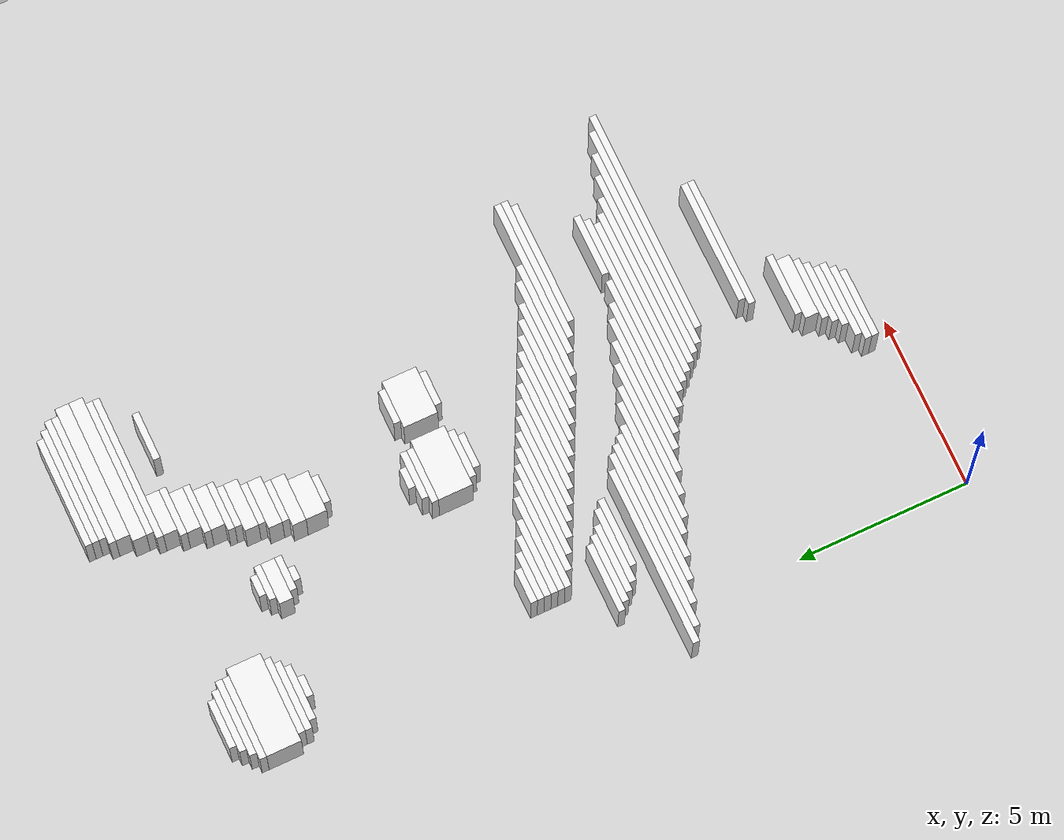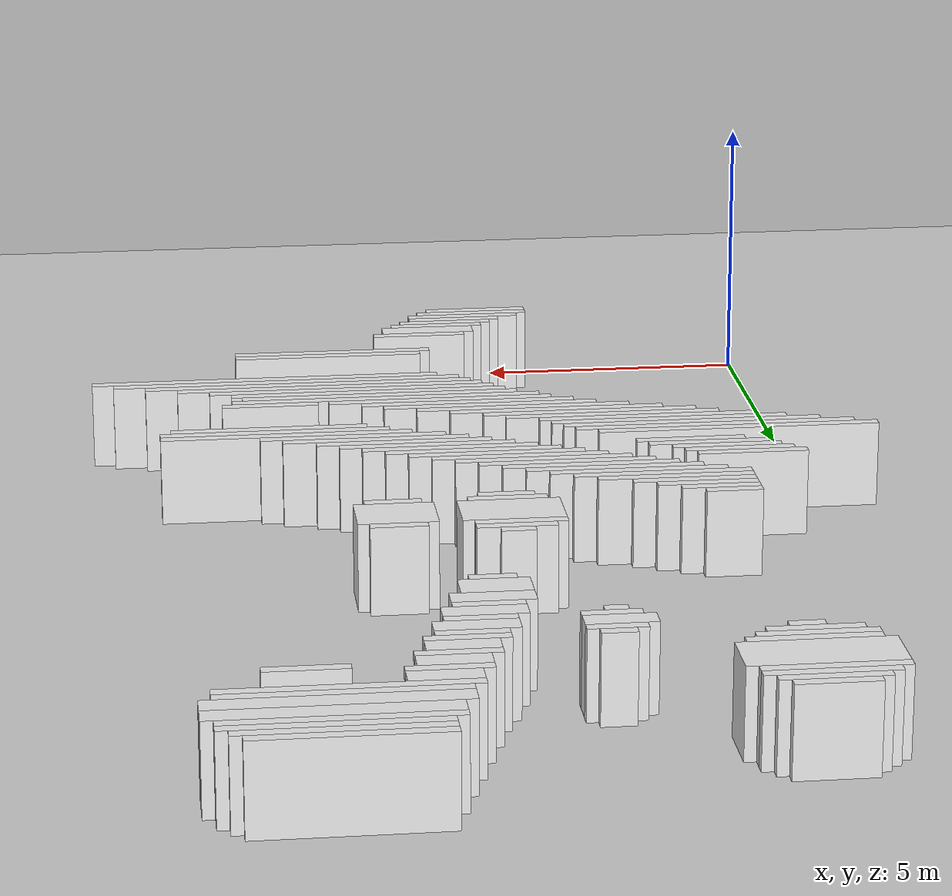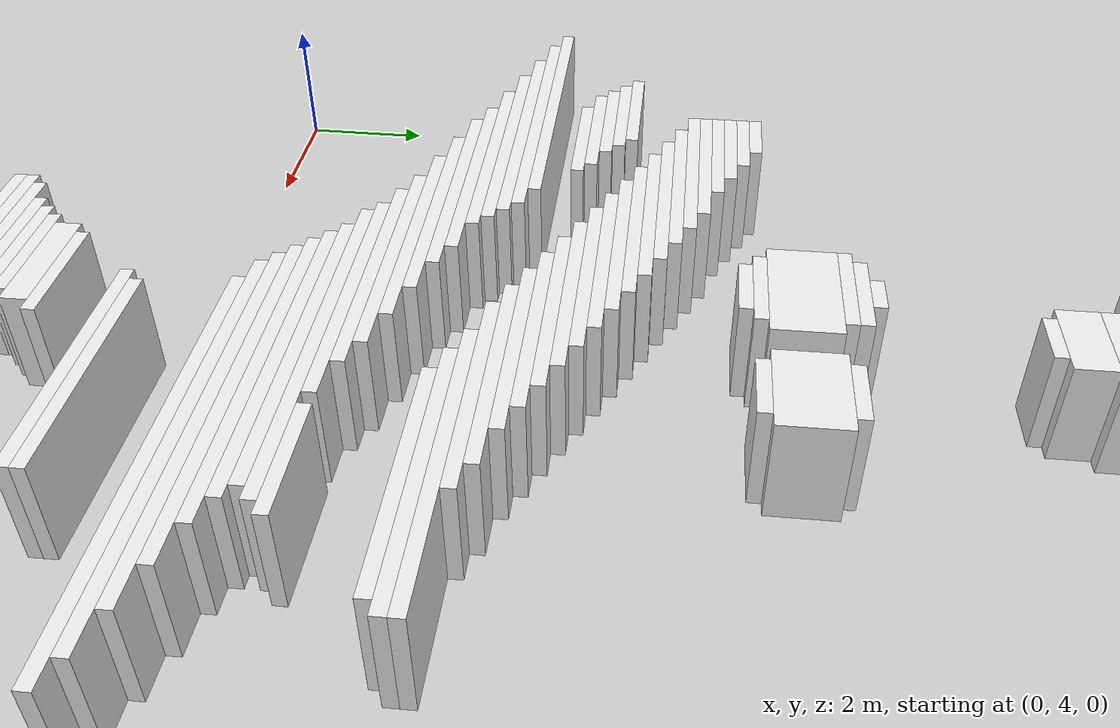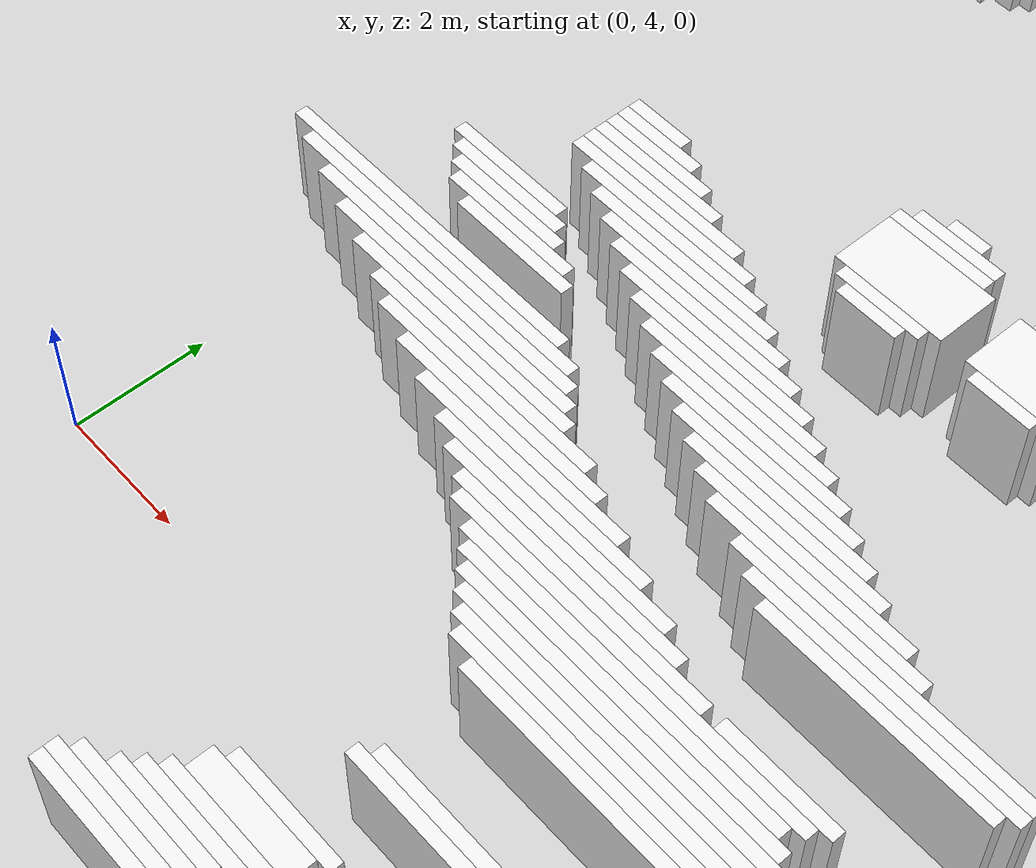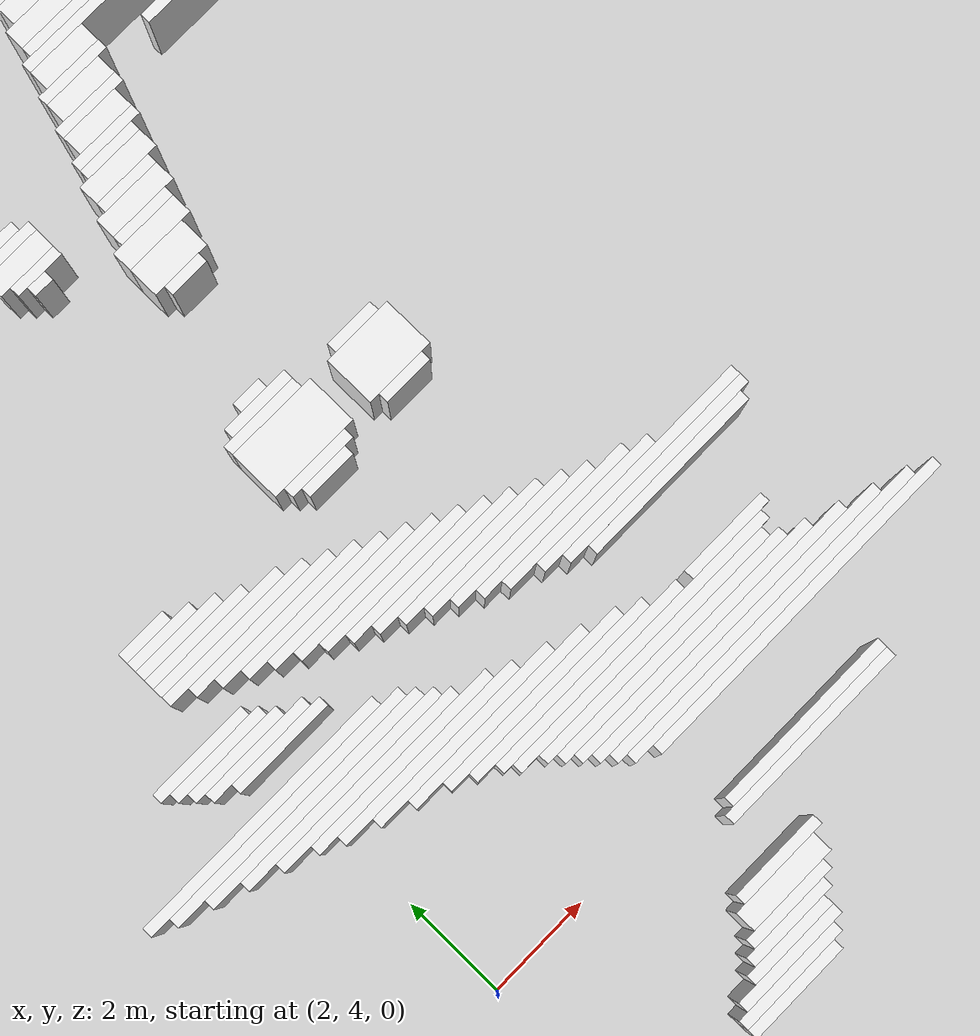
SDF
<sdf version="1.7">
 <world name="default">
  <model name="ground_plane">
   <static>1</static>
   <link name="link">
    <collision name="collision">
     <geometry><plane><normal>0 0 1</normal><size>120 120</size></plane></geometry>
    </collision>
    <visual name="visual">
     <geometry><plane><normal>0 0 1</normal><size>120 120</size></plane></geometry>
     <material>
      <script><uri>file://media/materials/scripts/gazebo.material</uri><name>Gazebo/Grey</name></script>
     </material>
    </visual>
   </link>
  </model>
  <model name="random_complex_03_model">
   <static>1</static>
   <link name="obs_848">
    <pose>9.6000 22.1000 0.8000 0 0 0</pose>
    <collision name="obs_848_col"><geometry><box><size>3.2000 0.2000 1.6000</size></box></geometry></collision>
    <visual name="obs_848_vis">
     <geometry><box><size>3.2000 0.2000 1.6000</size></box></geometry>
     <material>
      <script><uri>file://media/materials/scripts/gazebo.material</uri><name>Gazebo/White</name></script>
     </material>
    </visual>
   </link>
   <link name="obs_857">
    <pose>9.7000 21.9000 0.8000 0 0 0</pose>
    <collision name="obs_857_col"><geometry><box><size>3.4000 0.2000 1.6000</size></box></geometry></collision>
    <visual name="obs_857_vis">
     <geometry><box><size>3.4000 0.2000 1.6000</size></box></geometry>
     <material>
      <script><uri>file://media/materials/scripts/gazebo.material</uri><name>Gazebo/White</name></script>
     </material>
    </visual>
   </link>
   <link name="obs_866">
    <pose>9.8000 21.7000 0.8000 0 0 0</pose>
    <collision name="obs_866_col"><geometry><box><size>3.6000 0.2000 1.6000</size></box></geometry></collision>
    <visual name="obs_866_vis">
     <geometry><box><size>3.6000 0.2000 1.6000</size></box></geometry>
     <material>
      <script><uri>file://media/materials/scripts/gazebo.material</uri><name>Gazebo/White</name></script>
     </material>
    </visual>
   </link>
   <link name="obs_875">
    <pose>9.7000 21.5000 0.8000 0 0 0</pose>
    <collision name="obs_875_col"><geometry><box><size>3.8000 0.2000 1.6000</size></box></geometry></collision>
    <visual name="obs_875_vis">
     <geometry><box><size>3.8000 0.2000 1.6000</size></box></geometry>
     <material>
      <script><uri>file://media/materials/scripts/gazebo.material</uri><name>Gazebo/White</name></script>
     </material>
    </visual>
   </link>
   <link name="obs_889">
    <pose>9.8000 21.2000 0.8000 0 0 0</pose>
    <collision name="obs_889_col"><geometry><box><size>4.0000 0.4000 1.6000</size></box></geometry></collision>
    <visual name="obs_889_vis">
     <geometry><box><size>4.0000 0.4000 1.6000</size></box></geometry>
     <material>
      <script><uri>file://media/materials/scripts/gazebo.material</uri><name>Gazebo/White</name></script>
     </material>
    </visual>
   </link>
   <link name="obs_904">
    <pose>2.1000 20.9000 0.8000 0 0 0</pose>
    <collision name="obs_904_col"><geometry><box><size>1.4000 0.2000 1.6000</size></box></geometry></collision>
    <visual name="obs_904_vis">
     <geometry><box><size>1.4000 0.2000 1.6000</size></box></geometry>
     <material>
      <script><uri>file://media/materials/scripts/gazebo.material</uri><name>Gazebo/White</name></script>
     </material>
    </visual>
   </link>
   <link name="obs_909">
    <pose>9.7000 20.8000 0.8000 0 0 0</pose>
    <collision name="obs_909_col"><geometry><box><size>4.2000 0.4000 1.6000</size></box></geometry></collision>
    <visual name="obs_909_vis">
     <geometry><box><size>4.2000 0.4000 1.6000</size></box></geometry>
     <material>
      <script><uri>file://media/materials/scripts/gazebo.material</uri><name>Gazebo/White</name></script>
     </material>
    </visual>
   </link>
   <link name="obs_915">
    <pose>2.1000 20.7000 0.8000 0 0 0</pose>
    <collision name="obs_915_col"><geometry><box><size>1.8000 0.2000 1.6000</size></box></geometry></collision>
    <visual name="obs_915_vis">
     <geometry><box><size>1.8000 0.2000 1.6000</size></box></geometry>
     <material>
      <script><uri>file://media/materials/scripts/gazebo.material</uri><name>Gazebo/White</name></script>
     </material>
    </visual>
   </link>
   <link name="obs_926">
    <pose>2.1000 20.5000 0.8000 0 0 0</pose>
    <collision name="obs_926_col"><geometry><box><size>2.2000 0.2000 1.6000</size></box></geometry></collision>
    <visual name="obs_926_vis">
     <geometry><box><size>2.2000 0.2000 1.6000</size></box></geometry>
     <material>
      <script><uri>file://media/materials/scripts/gazebo.material</uri><name>Gazebo/White</name></script>
     </material>
    </visual>
   </link>
   <link name="obs_927">
    <pose>9.6000 20.5000 0.8000 0 0 0</pose>
    <collision name="obs_927_col"><geometry><box><size>4.0000 0.2000 1.6000</size></box></geometry></collision>
    <visual name="obs_927_vis">
     <geometry><box><size>4.0000 0.2000 1.6000</size></box></geometry>
     <material>
      <script><uri>file://media/materials/scripts/gazebo.material</uri><name>Gazebo/White</name></script>
     </material>
    </visual>
   </link>
   <link name="obs_937">
    <pose>2.0000 20.3000 0.8000 0 0 0</pose>
    <collision name="obs_937_col"><geometry><box><size>2.4000 0.2000 1.6000</size></box></geometry></collision>
    <visual name="obs_937_vis">
     <geometry><box><size>2.4000 0.2000 1.6000</size></box></geometry>
     <material>
      <script><uri>file://media/materials/scripts/gazebo.material</uri><name>Gazebo/White</name></script>
     </material>
    </visual>
   </link>
   <link name="obs_938">
    <pose>9.5000 20.3000 0.8000 0 0 0</pose>
    <collision name="obs_938_col"><geometry><box><size>4.2000 0.2000 1.6000</size></box></geometry></collision>
    <visual name="obs_938_vis">
     <geometry><box><size>4.2000 0.2000 1.6000</size></box></geometry>
     <material>
      <script><uri>file://media/materials/scripts/gazebo.material</uri><name>Gazebo/White</name></script>
     </material>
    </visual>
   </link>
   <link name="obs_953">
    <pose>8.0000 20.0000 0.8000 0 0 0</pose>
    <collision name="obs_953_col"><geometry><box><size>1.2000 0.4000 1.6000</size></box></geometry></collision>
    <visual name="obs_953_vis">
     <geometry><box><size>1.2000 0.4000 1.6000</size></box></geometry>
     <material>
      <script><uri>file://media/materials/scripts/gazebo.material</uri><name>Gazebo/White</name></script>
     </material>
    </visual>
   </link>
   <link name="obs_970">
    <pose>7.9000 19.7000 0.8000 0 0 0</pose>
    <collision name="obs_970_col"><geometry><box><size>1.4000 0.2000 1.6000</size></box></geometry></collision>
    <visual name="obs_970_vis">
     <geometry><box><size>1.4000 0.2000 1.6000</size></box></geometry>
     <material>
      <script><uri>file://media/materials/scripts/gazebo.material</uri><name>Gazebo/White</name></script>
     </material>
    </visual>
   </link>
   <link name="obs_982">
    <pose>10.1000 19.5000 0.8000 0 0 0</pose>
    <collision name="obs_982_col"><geometry><box><size>1.4000 0.2000 1.6000</size></box></geometry></collision>
    <visual name="obs_982_vis">
     <geometry><box><size>1.4000 0.2000 1.6000</size></box></geometry>
     <material>
      <script><uri>file://media/materials/scripts/gazebo.material</uri><name>Gazebo/White</name></script>
     </material>
    </visual>
   </link>
   <link name="obs_988">
    <pose>2.1000 19.7000 0.8000 0 0 0</pose>
    <collision name="obs_988_col"><geometry><box><size>2.6000 1.0000 1.6000</size></box></geometry></collision>
    <visual name="obs_988_vis">
     <geometry><box><size>2.6000 1.0000 1.6000</size></box></geometry>
     <material>
      <script><uri>file://media/materials/scripts/gazebo.material</uri><name>Gazebo/White</name></script>
     </material>
    </visual>
   </link>
   <link name="obs_989">
    <pose>7.8000 19.4000 0.8000 0 0 0</pose>
    <collision name="obs_989_col"><geometry><box><size>1.2000 0.4000 1.6000</size></box></geometry></collision>
    <visual name="obs_989_vis">
     <geometry><box><size>1.2000 0.4000 1.6000</size></box></geometry>
     <material>
      <script><uri>file://media/materials/scripts/gazebo.material</uri><name>Gazebo/White</name></script>
     </material>
    </visual>
   </link>
   <link name="obs_1003">
    <pose>2.1000 19.1000 0.8000 0 0 0</pose>
    <collision name="obs_1003_col"><geometry><box><size>2.2000 0.2000 1.6000</size></box></geometry></collision>
    <visual name="obs_1003_vis">
     <geometry><box><size>2.2000 0.2000 1.6000</size></box></geometry>
     <material>
      <script><uri>file://media/materials/scripts/gazebo.material</uri><name>Gazebo/White</name></script>
     </material>
    </visual>
   </link>
   <link name="obs_1004">
    <pose>7.7000 19.1000 0.8000 0 0 0</pose>
    <collision name="obs_1004_col"><geometry><box><size>1.4000 0.2000 1.6000</size></box></geometry></collision>
    <visual name="obs_1004_vis">
     <geometry><box><size>1.4000 0.2000 1.6000</size></box></geometry>
     <material>
      <script><uri>file://media/materials/scripts/gazebo.material</uri><name>Gazebo/White</name></script>
     </material>
    </visual>
   </link>
   <link name="obs_1012">
    <pose>2.0000 18.9000 0.8000 0 0 0</pose>
    <collision name="obs_1012_col"><geometry><box><size>2.0000 0.2000 1.6000</size></box></geometry></collision>
    <visual name="obs_1012_vis">
     <geometry><box><size>2.0000 0.2000 1.6000</size></box></geometry>
     <material>
      <script><uri>file://media/materials/scripts/gazebo.material</uri><name>Gazebo/White</name></script>
     </material>
    </visual>
   </link>
   <link name="obs_1017">
    <pose>7.6000 18.8000 0.8000 0 0 0</pose>
    <collision name="obs_1017_col"><geometry><box><size>1.2000 0.4000 1.6000</size></box></geometry></collision>
    <visual name="obs_1017_vis">
     <geometry><box><size>1.2000 0.4000 1.6000</size></box></geometry>
     <material>
      <script><uri>file://media/materials/scripts/gazebo.material</uri><name>Gazebo/White</name></script>
     </material>
    </visual>
   </link>
   <link name="obs_1020">
    <pose>2.0000 18.7000 0.8000 0 0 0</pose>
    <collision name="obs_1020_col"><geometry><box><size>1.6000 0.2000 1.6000</size></box></geometry></collision>
    <visual name="obs_1020_vis">
     <geometry><box><size>1.6000 0.2000 1.6000</size></box></geometry>
     <material>
      <script><uri>file://media/materials/scripts/gazebo.material</uri><name>Gazebo/White</name></script>
     </material>
    </visual>
   </link>
   <link name="obs_1028">
    <pose>2.1000 18.5000 0.8000 0 0 0</pose>
    <collision name="obs_1028_col"><geometry><box><size>0.6000 0.2000 1.6000</size></box></geometry></collision>
    <visual name="obs_1028_vis">
     <geometry><box><size>0.6000 0.2000 1.6000</size></box></geometry>
     <material>
      <script><uri>file://media/materials/scripts/gazebo.material</uri><name>Gazebo/White</name></script>
     </material>
    </visual>
   </link>
   <link name="obs_1029">
    <pose>5.1000 18.5000 0.8000 0 0 0</pose>
    <collision name="obs_1029_col"><geometry><box><size>0.6000 0.2000 1.6000</size></box></geometry></collision>
    <visual name="obs_1029_vis">
     <geometry><box><size>0.6000 0.2000 1.6000</size></box></geometry>
     <material>
      <script><uri>file://media/materials/scripts/gazebo.material</uri><name>Gazebo/White</name></script>
     </material>
    </visual>
   </link>
   <link name="obs_1030">
    <pose>7.5000 18.5000 0.8000 0 0 0</pose>
    <collision name="obs_1030_col"><geometry><box><size>1.4000 0.2000 1.6000</size></box></geometry></collision>
    <visual name="obs_1030_vis">
     <geometry><box><size>1.4000 0.2000 1.6000</size></box></geometry>
     <material>
      <script><uri>file://media/materials/scripts/gazebo.material</uri><name>Gazebo/White</name></script>
     </material>
    </visual>
   </link>
   <link name="obs_1040">
    <pose>5.1000 18.3000 0.8000 0 0 0</pose>
    <collision name="obs_1040_col"><geometry><box><size>1.0000 0.2000 1.6000</size></box></geometry></collision>
    <visual name="obs_1040_vis">
     <geometry><box><size>1.0000 0.2000 1.6000</size></box></geometry>
     <material>
      <script><uri>file://media/materials/scripts/gazebo.material</uri><name>Gazebo/White</name></script>
     </material>
    </visual>
   </link>
   <link name="obs_1041">
    <pose>7.4000 18.3000 0.8000 0 0 0</pose>
    <collision name="obs_1041_col"><geometry><box><size>1.2000 0.2000 1.6000</size></box></geometry></collision>
    <visual name="obs_1041_vis">
     <geometry><box><size>1.2000 0.2000 1.6000</size></box></geometry>
     <material>
      <script><uri>file://media/materials/scripts/gazebo.material</uri><name>Gazebo/White</name></script>
     </material>
    </visual>
   </link>
   <link name="obs_1055">
    <pose>5.0000 18.0000 0.8000 0 0 0</pose>
    <collision name="obs_1055_col"><geometry><box><size>1.2000 0.4000 1.6000</size></box></geometry></collision>
    <visual name="obs_1055_vis">
     <geometry><box><size>1.2000 0.4000 1.6000</size></box></geometry>
     <material>
      <script><uri>file://media/materials/scripts/gazebo.material</uri><name>Gazebo/White</name></script>
     </material>
    </visual>
   </link>
   <link name="obs_1056">
    <pose>7.3000 18.0000 0.8000 0 0 0</pose>
    <collision name="obs_1056_col"><geometry><box><size>1.4000 0.4000 1.6000</size></box></geometry></collision>
    <visual name="obs_1056_vis">
     <geometry><box><size>1.4000 0.4000 1.6000</size></box></geometry>
     <material>
      <script><uri>file://media/materials/scripts/gazebo.material</uri><name>Gazebo/White</name></script>
     </material>
    </visual>
   </link>
   <link name="obs_1066">
    <pose>5.1000 17.7000 0.8000 0 0 0</pose>
    <collision name="obs_1066_col"><geometry><box><size>1.0000 0.2000 1.6000</size></box></geometry></collision>
    <visual name="obs_1066_vis">
     <geometry><box><size>1.0000 0.2000 1.6000</size></box></geometry>
     <material>
      <script><uri>file://media/materials/scripts/gazebo.material</uri><name>Gazebo/White</name></script>
     </material>
    </visual>
   </link>
   <link name="obs_1067">
    <pose>7.2000 17.7000 0.8000 0 0 0</pose>
    <collision name="obs_1067_col"><geometry><box><size>1.2000 0.2000 1.6000</size></box></geometry></collision>
    <visual name="obs_1067_vis">
     <geometry><box><size>1.2000 0.2000 1.6000</size></box></geometry>
     <material>
      <script><uri>file://media/materials/scripts/gazebo.material</uri><name>Gazebo/White</name></script>
     </material>
    </visual>
   </link>
   <link name="obs_1076">
    <pose>5.0000 17.5000 0.8000 0 0 0</pose>
    <collision name="obs_1076_col"><geometry><box><size>0.4000 0.2000 1.6000</size></box></geometry></collision>
    <visual name="obs_1076_vis">
     <geometry><box><size>0.4000 0.2000 1.6000</size></box></geometry>
     <material>
      <script><uri>file://media/materials/scripts/gazebo.material</uri><name>Gazebo/White</name></script>
     </material>
    </visual>
   </link>
   <link name="obs_1083">
    <pose>7.1000 17.4000 0.8000 0 0 0</pose>
    <collision name="obs_1083_col"><geometry><box><size>1.4000 0.4000 1.6000</size></box></geometry></collision>
    <visual name="obs_1083_vis">
     <geometry><box><size>1.4000 0.4000 1.6000</size></box></geometry>
     <material>
      <script><uri>file://media/materials/scripts/gazebo.material</uri><name>Gazebo/White</name></script>
     </material>
    </visual>
   </link>
   <link name="obs_1093">
    <pose>7.0000 17.1000 0.8000 0 0 0</pose>
    <collision name="obs_1093_col"><geometry><box><size>1.2000 0.2000 1.6000</size></box></geometry></collision>
    <visual name="obs_1093_vis">
     <geometry><box><size>1.2000 0.2000 1.6000</size></box></geometry>
     <material>
      <script><uri>file://media/materials/scripts/gazebo.material</uri><name>Gazebo/White</name></script>
     </material>
    </visual>
   </link>
   <link name="obs_1103">
    <pose>6.9000 16.8000 0.8000 0 0 0</pose>
    <collision name="obs_1103_col"><geometry><box><size>1.4000 0.4000 1.6000</size></box></geometry></collision>
    <visual name="obs_1103_vis">
     <geometry><box><size>1.4000 0.4000 1.6000</size></box></geometry>
     <material>
      <script><uri>file://media/materials/scripts/gazebo.material</uri><name>Gazebo/White</name></script>
     </material>
    </visual>
   </link>
   <link name="obs_1122">
    <pose>6.8000 16.3000 0.8000 0 0 0</pose>
    <collision name="obs_1122_col"><geometry><box><size>1.2000 0.6000 1.6000</size></box></geometry></collision>
    <visual name="obs_1122_vis">
     <geometry><box><size>1.2000 0.6000 1.6000</size></box></geometry>
     <material>
      <script><uri>file://media/materials/scripts/gazebo.material</uri><name>Gazebo/White</name></script>
     </material>
    </visual>
   </link>
   <link name="obs_1132">
    <pose>6.8000 15.9000 0.8000 0 0 0</pose>
    <collision name="obs_1132_col"><geometry><box><size>0.8000 0.2000 1.6000</size></box></geometry></collision>
    <visual name="obs_1132_vis">
     <geometry><box><size>0.8000 0.2000 1.6000</size></box></geometry>
     <material>
      <script><uri>file://media/materials/scripts/gazebo.material</uri><name>Gazebo/White</name></script>
     </material>
    </visual>
   </link>
   <link name="obs_1182">
    <pose>6.1000 13.7000 0.8000 0 0 0</pose>
    <collision name="obs_1182_col"><geometry><box><size>0.6000 0.2000 1.6000</size></box></geometry></collision>
    <visual name="obs_1182_vis">
     <geometry><box><size>0.6000 0.2000 1.6000</size></box></geometry>
     <material>
      <script><uri>file://media/materials/scripts/gazebo.material</uri><name>Gazebo/White</name></script>
     </material>
    </visual>
   </link>
   <link name="obs_1187">
    <pose>6.1000 13.5000 0.8000 0 0 0</pose>
    <collision name="obs_1187_col"><geometry><box><size>1.4000 0.2000 1.6000</size></box></geometry></collision>
    <visual name="obs_1187_vis">
     <geometry><box><size>1.4000 0.2000 1.6000</size></box></geometry>
     <material>
      <script><uri>file://media/materials/scripts/gazebo.material</uri><name>Gazebo/White</name></script>
     </material>
    </visual>
   </link>
   <link name="obs_1194">
    <pose>6.0000 13.3000 0.8000 0 0 0</pose>
    <collision name="obs_1194_col"><geometry><box><size>1.6000 0.2000 1.6000</size></box></geometry></collision>
    <visual name="obs_1194_vis">
     <geometry><box><size>1.6000 0.2000 1.6000</size></box></geometry>
     <material>
      <script><uri>file://media/materials/scripts/gazebo.material</uri><name>Gazebo/White</name></script>
     </material>
    </visual>
   </link>
   <link name="obs_1195">
    <pose>8.1000 13.3000 0.8000 0 0 0</pose>
    <collision name="obs_1195_col"><geometry><box><size>1.0000 0.2000 1.6000</size></box></geometry></collision>
    <visual name="obs_1195_vis">
     <geometry><box><size>1.0000 0.2000 1.6000</size></box></geometry>
     <material>
      <script><uri>file://media/materials/scripts/gazebo.material</uri><name>Gazebo/White</name></script>
     </material>
    </visual>
   </link>
   <link name="obs_1218">
    <pose>6.1000 12.7000 0.8000 0 0 0</pose>
    <collision name="obs_1218_col"><geometry><box><size>1.8000 1.0000 1.6000</size></box></geometry></collision>
    <visual name="obs_1218_vis">
     <geometry><box><size>1.8000 1.0000 1.6000</size></box></geometry>
     <material>
      <script><uri>file://media/materials/scripts/gazebo.material</uri><name>Gazebo/White</name></script>
     </material>
    </visual>
   </link>
   <link name="obs_1219">
    <pose>8.1000 12.7000 0.8000 0 0 0</pose>
    <collision name="obs_1219_col"><geometry><box><size>1.4000 1.0000 1.6000</size></box></geometry></collision>
    <visual name="obs_1219_vis">
     <geometry><box><size>1.4000 1.0000 1.6000</size></box></geometry>
     <material>
      <script><uri>file://media/materials/scripts/gazebo.material</uri><name>Gazebo/White</name></script>
     </material>
    </visual>
   </link>
   <link name="obs_1225">
    <pose>2.1000 12.1000 0.8000 0 0 0</pose>
    <collision name="obs_1225_col"><geometry><box><size>1.0000 0.2000 1.6000</size></box></geometry></collision>
    <visual name="obs_1225_vis">
     <geometry><box><size>1.0000 0.2000 1.6000</size></box></geometry>
     <material>
      <script><uri>file://media/materials/scripts/gazebo.material</uri><name>Gazebo/White</name></script>
     </material>
    </visual>
   </link>
   <link name="obs_1226">
    <pose>6.1000 12.1000 0.8000 0 0 0</pose>
    <collision name="obs_1226_col"><geometry><box><size>1.4000 0.2000 1.6000</size></box></geometry></collision>
    <visual name="obs_1226_vis">
     <geometry><box><size>1.4000 0.2000 1.6000</size></box></geometry>
     <material>
      <script><uri>file://media/materials/scripts/gazebo.material</uri><name>Gazebo/White</name></script>
     </material>
    </visual>
   </link>
   <link name="obs_1227">
    <pose>8.1000 12.1000 0.8000 0 0 0</pose>
    <collision name="obs_1227_col"><geometry><box><size>1.0000 0.2000 1.6000</size></box></geometry></collision>
    <visual name="obs_1227_vis">
     <geometry><box><size>1.0000 0.2000 1.6000</size></box></geometry>
     <material>
      <script><uri>file://media/materials/scripts/gazebo.material</uri><name>Gazebo/White</name></script>
     </material>
    </visual>
   </link>
   <link name="obs_1233">
    <pose>2.3000 11.9000 0.8000 0 0 0</pose>
    <collision name="obs_1233_col"><geometry><box><size>1.4000 0.2000 1.6000</size></box></geometry></collision>
    <visual name="obs_1233_vis">
     <geometry><box><size>1.4000 0.2000 1.6000</size></box></geometry>
     <material>
      <script><uri>file://media/materials/scripts/gazebo.material</uri><name>Gazebo/White</name></script>
     </material>
    </visual>
   </link>
   <link name="obs_1234">
    <pose>6.1000 11.9000 0.8000 0 0 0</pose>
    <collision name="obs_1234_col"><geometry><box><size>1.0000 0.2000 1.6000</size></box></geometry></collision>
    <visual name="obs_1234_vis">
     <geometry><box><size>1.0000 0.2000 1.6000</size></box></geometry>
     <material>
      <script><uri>file://media/materials/scripts/gazebo.material</uri><name>Gazebo/White</name></script>
     </material>
    </visual>
   </link>
   <link name="obs_1237">
    <pose>2.5000 11.7000 0.8000 0 0 0</pose>
    <collision name="obs_1237_col"><geometry><box><size>1.8000 0.2000 1.6000</size></box></geometry></collision>
    <visual name="obs_1237_vis">
     <geometry><box><size>1.8000 0.2000 1.6000</size></box></geometry>
     <material>
      <script><uri>file://media/materials/scripts/gazebo.material</uri><name>Gazebo/White</name></script>
     </material>
    </visual>
   </link>
   <link name="obs_1241">
    <pose>2.7000 11.5000 0.8000 0 0 0</pose>
    <collision name="obs_1241_col"><geometry><box><size>2.2000 0.2000 1.6000</size></box></geometry></collision>
    <visual name="obs_1241_vis">
     <geometry><box><size>2.2000 0.2000 1.6000</size></box></geometry>
     <material>
      <script><uri>file://media/materials/scripts/gazebo.material</uri><name>Gazebo/White</name></script>
     </material>
    </visual>
   </link>
   <link name="obs_1249">
    <pose>3.0000 11.3000 0.8000 0 0 0</pose>
    <collision name="obs_1249_col"><geometry><box><size>2.8000 0.2000 1.6000</size></box></geometry></collision>
    <visual name="obs_1249_vis">
     <geometry><box><size>2.8000 0.2000 1.6000</size></box></geometry>
     <material>
      <script><uri>file://media/materials/scripts/gazebo.material</uri><name>Gazebo/White</name></script>
     </material>
    </visual>
   </link>
   <link name="obs_1254">
    <pose>3.2000 11.1000 0.8000 0 0 0</pose>
    <collision name="obs_1254_col"><geometry><box><size>3.2000 0.2000 1.6000</size></box></geometry></collision>
    <visual name="obs_1254_vis">
     <geometry><box><size>3.2000 0.2000 1.6000</size></box></geometry>
     <material>
      <script><uri>file://media/materials/scripts/gazebo.material</uri><name>Gazebo/White</name></script>
     </material>
    </visual>
   </link>
   <link name="obs_1265">
    <pose>3.6000 10.9000 0.8000 0 0 0</pose>
    <collision name="obs_1265_col"><geometry><box><size>3.2000 0.2000 1.6000</size></box></geometry></collision>
    <visual name="obs_1265_vis">
     <geometry><box><size>3.2000 0.2000 1.6000</size></box></geometry>
     <material>
      <script><uri>file://media/materials/scripts/gazebo.material</uri><name>Gazebo/White</name></script>
     </material>
    </visual>
   </link>
   <link name="obs_1273">
    <pose>4.0000 10.7000 0.8000 0 0 0</pose>
    <collision name="obs_1273_col"><geometry><box><size>3.2000 0.2000 1.6000</size></box></geometry></collision>
    <visual name="obs_1273_vis">
     <geometry><box><size>3.2000 0.2000 1.6000</size></box></geometry>
     <material>
      <script><uri>file://media/materials/scripts/gazebo.material</uri><name>Gazebo/White</name></script>
     </material>
    </visual>
   </link>
   <link name="obs_1282">
    <pose>4.4000 10.5000 0.8000 0 0 0</pose>
    <collision name="obs_1282_col"><geometry><box><size>3.2000 0.2000 1.6000</size></box></geometry></collision>
    <visual name="obs_1282_vis">
     <geometry><box><size>3.2000 0.2000 1.6000</size></box></geometry>
     <material>
      <script><uri>file://media/materials/scripts/gazebo.material</uri><name>Gazebo/White</name></script>
     </material>
    </visual>
   </link>
   <link name="obs_1293">
    <pose>4.8000 10.3000 0.8000 0 0 0</pose>
    <collision name="obs_1293_col"><geometry><box><size>3.2000 0.2000 1.6000</size></box></geometry></collision>
    <visual name="obs_1293_vis">
     <geometry><box><size>3.2000 0.2000 1.6000</size></box></geometry>
     <material>
      <script><uri>file://media/materials/scripts/gazebo.material</uri><name>Gazebo/White</name></script>
     </material>
    </visual>
   </link>
   <link name="obs_1303">
    <pose>1.4000 10.1000 0.8000 0 0 0</pose>
    <collision name="obs_1303_col"><geometry><box><size>2.0000 0.2000 1.6000</size></box></geometry></collision>
    <visual name="obs_1303_vis">
     <geometry><box><size>2.0000 0.2000 1.6000</size></box></geometry>
     <material>
      <script><uri>file://media/materials/scripts/gazebo.material</uri><name>Gazebo/White</name></script>
     </material>
    </visual>
   </link>
   <link name="obs_1304">
    <pose>5.2000 10.1000 0.8000 0 0 0</pose>
    <collision name="obs_1304_col"><geometry><box><size>3.2000 0.2000 1.6000</size></box></geometry></collision>
    <visual name="obs_1304_vis">
     <geometry><box><size>3.2000 0.2000 1.6000</size></box></geometry>
     <material>
      <script><uri>file://media/materials/scripts/gazebo.material</uri><name>Gazebo/White</name></script>
     </material>
    </visual>
   </link>
   <link name="obs_1312">
    <pose>1.6000 9.9000 0.8000 0 0 0</pose>
    <collision name="obs_1312_col"><geometry><box><size>2.0000 0.2000 1.6000</size></box></geometry></collision>
    <visual name="obs_1312_vis">
     <geometry><box><size>2.0000 0.2000 1.6000</size></box></geometry>
     <material>
      <script><uri>file://media/materials/scripts/gazebo.material</uri><name>Gazebo/White</name></script>
     </material>
    </visual>
   </link>
   <link name="obs_1313">
    <pose>5.6000 9.9000 0.8000 0 0 0</pose>
    <collision name="obs_1313_col"><geometry><box><size>3.2000 0.2000 1.6000</size></box></geometry></collision>
    <visual name="obs_1313_vis">
     <geometry><box><size>3.2000 0.2000 1.6000</size></box></geometry>
     <material>
      <script><uri>file://media/materials/scripts/gazebo.material</uri><name>Gazebo/White</name></script>
     </material>
    </visual>
   </link>
   <link name="obs_1321">
    <pose>1.8000 9.7000 0.8000 0 0 0</pose>
    <collision name="obs_1321_col"><geometry><box><size>2.0000 0.2000 1.6000</size></box></geometry></collision>
    <visual name="obs_1321_vis">
     <geometry><box><size>2.0000 0.2000 1.6000</size></box></geometry>
     <material>
      <script><uri>file://media/materials/scripts/gazebo.material</uri><name>Gazebo/White</name></script>
     </material>
    </visual>
   </link>
   <link name="obs_1322">
    <pose>6.0000 9.7000 0.8000 0 0 0</pose>
    <collision name="obs_1322_col"><geometry><box><size>3.2000 0.2000 1.6000</size></box></geometry></collision>
    <visual name="obs_1322_vis">
     <geometry><box><size>3.2000 0.2000 1.6000</size></box></geometry>
     <material>
      <script><uri>file://media/materials/scripts/gazebo.material</uri><name>Gazebo/White</name></script>
     </material>
    </visual>
   </link>
   <link name="obs_1330">
    <pose>2.1000 9.5000 0.8000 0 0 0</pose>
    <collision name="obs_1330_col"><geometry><box><size>2.2000 0.2000 1.6000</size></box></geometry></collision>
    <visual name="obs_1330_vis">
     <geometry><box><size>2.2000 0.2000 1.6000</size></box></geometry>
     <material>
      <script><uri>file://media/materials/scripts/gazebo.material</uri><name>Gazebo/White</name></script>
     </material>
    </visual>
   </link>
   <link name="obs_1331">
    <pose>6.4000 9.5000 0.8000 0 0 0</pose>
    <collision name="obs_1331_col"><geometry><box><size>3.2000 0.2000 1.6000</size></box></geometry></collision>
    <visual name="obs_1331_vis">
     <geometry><box><size>3.2000 0.2000 1.6000</size></box></geometry>
     <material>
      <script><uri>file://media/materials/scripts/gazebo.material</uri><name>Gazebo/White</name></script>
     </material>
    </visual>
   </link>
   <link name="obs_1339">
    <pose>2.4000 9.3000 0.8000 0 0 0</pose>
    <collision name="obs_1339_col"><geometry><box><size>2.0000 0.2000 1.6000</size></box></geometry></collision>
    <visual name="obs_1339_vis">
     <geometry><box><size>2.0000 0.2000 1.6000</size></box></geometry>
     <material>
      <script><uri>file://media/materials/scripts/gazebo.material</uri><name>Gazebo/White</name></script>
     </material>
    </visual>
   </link>
   <link name="obs_1340">
    <pose>6.8000 9.3000 0.8000 0 0 0</pose>
    <collision name="obs_1340_col"><geometry><box><size>3.2000 0.2000 1.6000</size></box></geometry></collision>
    <visual name="obs_1340_vis">
     <geometry><box><size>3.2000 0.2000 1.6000</size></box></geometry>
     <material>
      <script><uri>file://media/materials/scripts/gazebo.material</uri><name>Gazebo/White</name></script>
     </material>
    </visual>
   </link>
   <link name="obs_1347">
    <pose>7.2000 9.1000 0.8000 0 0 0</pose>
    <collision name="obs_1347_col"><geometry><box><size>3.2000 0.2000 1.6000</size></box></geometry></collision>
    <visual name="obs_1347_vis">
     <geometry><box><size>3.2000 0.2000 1.6000</size></box></geometry>
     <material>
      <script><uri>file://media/materials/scripts/gazebo.material</uri><name>Gazebo/White</name></script>
     </material>
    </visual>
   </link>
   <link name="obs_1356">
    <pose>7.6000 8.9000 0.8000 0 0 0</pose>
    <collision name="obs_1356_col"><geometry><box><size>3.2000 0.2000 1.6000</size></box></geometry></collision>
    <visual name="obs_1356_vis">
     <geometry><box><size>3.2000 0.2000 1.6000</size></box></geometry>
     <material>
      <script><uri>file://media/materials/scripts/gazebo.material</uri><name>Gazebo/White</name></script>
     </material>
    </visual>
   </link>
   <link name="obs_1361">
    <pose>1.4000 8.7000 0.8000 0 0 0</pose>
    <collision name="obs_1361_col"><geometry><box><size>5.2000 0.2000 1.6000</size></box></geometry></collision>
    <visual name="obs_1361_vis">
     <geometry><box><size>5.2000 0.2000 1.6000</size></box></geometry>
     <material>
      <script><uri>file://media/materials/scripts/gazebo.material</uri><name>Gazebo/White</name></script>
     </material>
    </visual>
   </link>
   <link name="obs_1362">
    <pose>8.1000 8.7000 0.8000 0 0 0</pose>
    <collision name="obs_1362_col"><geometry><box><size>3.4000 0.2000 1.6000</size></box></geometry></collision>
    <visual name="obs_1362_vis">
     <geometry><box><size>3.4000 0.2000 1.6000</size></box></geometry>
     <material>
      <script><uri>file://media/materials/scripts/gazebo.material</uri><name>Gazebo/White</name></script>
     </material>
    </visual>
   </link>
   <link name="obs_1369">
    <pose>1.8000 8.5000 0.8000 0 0 0</pose>
    <collision name="obs_1369_col"><geometry><box><size>5.2000 0.2000 1.6000</size></box></geometry></collision>
    <visual name="obs_1369_vis">
     <geometry><box><size>5.2000 0.2000 1.6000</size></box></geometry>
     <material>
      <script><uri>file://media/materials/scripts/gazebo.material</uri><name>Gazebo/White</name></script>
     </material>
    </visual>
   </link>
   <link name="obs_1370">
    <pose>8.5000 8.5000 0.8000 0 0 0</pose>
    <collision name="obs_1370_col"><geometry><box><size>3.4000 0.2000 1.6000</size></box></geometry></collision>
    <visual name="obs_1370_vis">
     <geometry><box><size>3.4000 0.2000 1.6000</size></box></geometry>
     <material>
      <script><uri>file://media/materials/scripts/gazebo.material</uri><name>Gazebo/White</name></script>
     </material>
    </visual>
   </link>
   <link name="obs_1377">
    <pose>2.2000 8.3000 0.8000 0 0 0</pose>
    <collision name="obs_1377_col"><geometry><box><size>4.8000 0.2000 1.6000</size></box></geometry></collision>
    <visual name="obs_1377_vis">
     <geometry><box><size>4.8000 0.2000 1.6000</size></box></geometry>
     <material>
      <script><uri>file://media/materials/scripts/gazebo.material</uri><name>Gazebo/White</name></script>
     </material>
    </visual>
   </link>
   <link name="obs_1378">
    <pose>9.7000 8.3000 0.8000 0 0 0</pose>
    <collision name="obs_1378_col"><geometry><box><size>4.6000 0.2000 1.6000</size></box></geometry></collision>
    <visual name="obs_1378_vis">
     <geometry><box><size>4.6000 0.2000 1.6000</size></box></geometry>
     <material>
      <script><uri>file://media/materials/scripts/gazebo.material</uri><name>Gazebo/White</name></script>
     </material>
    </visual>
   </link>
   <link name="obs_1383">
    <pose>2.6000 8.1000 0.8000 0 0 0</pose>
    <collision name="obs_1383_col"><geometry><box><size>4.4000 0.2000 1.6000</size></box></geometry></collision>
    <visual name="obs_1383_vis">
     <geometry><box><size>4.4000 0.2000 1.6000</size></box></geometry>
     <material>
      <script><uri>file://media/materials/scripts/gazebo.material</uri><name>Gazebo/White</name></script>
     </material>
    </visual>
   </link>
   <link name="obs_1384">
    <pose>9.9000 8.1000 0.8000 0 0 0</pose>
    <collision name="obs_1384_col"><geometry><box><size>4.2000 0.2000 1.6000</size></box></geometry></collision>
    <visual name="obs_1384_vis">
     <geometry><box><size>4.2000 0.2000 1.6000</size></box></geometry>
     <material>
      <script><uri>file://media/materials/scripts/gazebo.material</uri><name>Gazebo/White</name></script>
     </material>
    </visual>
   </link>
   <link name="obs_1391">
    <pose>3.0000 7.9000 0.8000 0 0 0</pose>
    <collision name="obs_1391_col"><geometry><box><size>4.0000 0.2000 1.6000</size></box></geometry></collision>
    <visual name="obs_1391_vis">
     <geometry><box><size>4.0000 0.2000 1.6000</size></box></geometry>
     <material>
      <script><uri>file://media/materials/scripts/gazebo.material</uri><name>Gazebo/White</name></script>
     </material>
    </visual>
   </link>
   <link name="obs_1392">
    <pose>10.0000 7.9000 0.8000 0 0 0</pose>
    <collision name="obs_1392_col"><geometry><box><size>3.6000 0.2000 1.6000</size></box></geometry></collision>
    <visual name="obs_1392_vis">
     <geometry><box><size>3.6000 0.2000 1.6000</size></box></geometry>
     <material>
      <script><uri>file://media/materials/scripts/gazebo.material</uri><name>Gazebo/White</name></script>
     </material>
    </visual>
   </link>
   <link name="obs_1394">
    <pose>3.6000 7.7000 0.8000 0 0 0</pose>
    <collision name="obs_1394_col"><geometry><box><size>4.0000 0.2000 1.6000</size></box></geometry></collision>
    <visual name="obs_1394_vis">
     <geometry><box><size>4.0000 0.2000 1.6000</size></box></geometry>
     <material>
      <script><uri>file://media/materials/scripts/gazebo.material</uri><name>Gazebo/White</name></script>
     </material>
    </visual>
   </link>
   <link name="obs_1403">
    <pose>4.0000 7.5000 0.8000 0 0 0</pose>
    <collision name="obs_1403_col"><geometry><box><size>4.0000 0.2000 1.6000</size></box></geometry></collision>
    <visual name="obs_1403_vis">
     <geometry><box><size>4.0000 0.2000 1.6000</size></box></geometry>
     <material>
      <script><uri>file://media/materials/scripts/gazebo.material</uri><name>Gazebo/White</name></script>
     </material>
    </visual>
   </link>
   <link name="obs_1412">
    <pose>4.6000 7.3000 0.8000 0 0 0</pose>
    <collision name="obs_1412_col"><geometry><box><size>4.0000 0.2000 1.6000</size></box></geometry></collision>
    <visual name="obs_1412_vis">
     <geometry><box><size>4.0000 0.2000 1.6000</size></box></geometry>
     <material>
      <script><uri>file://media/materials/scripts/gazebo.material</uri><name>Gazebo/White</name></script>
     </material>
    </visual>
   </link>
   <link name="obs_1417">
    <pose>5.2000 7.1000 0.8000 0 0 0</pose>
    <collision name="obs_1417_col"><geometry><box><size>4.0000 0.2000 1.6000</size></box></geometry></collision>
    <visual name="obs_1417_vis">
     <geometry><box><size>4.0000 0.2000 1.6000</size></box></geometry>
     <material>
      <script><uri>file://media/materials/scripts/gazebo.material</uri><name>Gazebo/White</name></script>
     </material>
    </visual>
   </link>
   <link name="obs_1424">
    <pose>5.8000 6.9000 0.8000 0 0 0</pose>
    <collision name="obs_1424_col"><geometry><box><size>4.0000 0.2000 1.6000</size></box></geometry></collision>
    <visual name="obs_1424_vis">
     <geometry><box><size>4.0000 0.2000 1.6000</size></box></geometry>
     <material>
      <script><uri>file://media/materials/scripts/gazebo.material</uri><name>Gazebo/White</name></script>
     </material>
    </visual>
   </link>
   <link name="obs_1433">
    <pose>6.2000 6.7000 0.8000 0 0 0</pose>
    <collision name="obs_1433_col"><geometry><box><size>4.0000 0.2000 1.6000</size></box></geometry></collision>
    <visual name="obs_1433_vis">
     <geometry><box><size>4.0000 0.2000 1.6000</size></box></geometry>
     <material>
      <script><uri>file://media/materials/scripts/gazebo.material</uri><name>Gazebo/White</name></script>
     </material>
    </visual>
   </link>
   <link name="obs_1437">
    <pose>6.7000 6.5000 0.8000 0 0 0</pose>
    <collision name="obs_1437_col"><geometry><box><size>4.2000 0.2000 1.6000</size></box></geometry></collision>
    <visual name="obs_1437_vis">
     <geometry><box><size>4.2000 0.2000 1.6000</size></box></geometry>
     <material>
      <script><uri>file://media/materials/scripts/gazebo.material</uri><name>Gazebo/White</name></script>
     </material>
    </visual>
   </link>
   <link name="obs_1438">
    <pose>9.9000 6.5000 0.8000 0 0 0</pose>
    <collision name="obs_1438_col"><geometry><box><size>1.8000 0.2000 1.6000</size></box></geometry></collision>
    <visual name="obs_1438_vis">
     <geometry><box><size>1.8000 0.2000 1.6000</size></box></geometry>
     <material>
      <script><uri>file://media/materials/scripts/gazebo.material</uri><name>Gazebo/White</name></script>
     </material>
    </visual>
   </link>
   <link name="obs_1446">
    <pose>7.7000 6.3000 0.8000 0 0 0</pose>
    <collision name="obs_1446_col"><geometry><box><size>5.8000 0.2000 1.6000</size></box></geometry></collision>
    <visual name="obs_1446_vis">
     <geometry><box><size>5.8000 0.2000 1.6000</size></box></geometry>
     <material>
      <script><uri>file://media/materials/scripts/gazebo.material</uri><name>Gazebo/White</name></script>
     </material>
    </visual>
   </link>
   <link name="obs_1452">
    <pose>7.8000 6.1000 0.8000 0 0 0</pose>
    <collision name="obs_1452_col"><geometry><box><size>5.2000 0.2000 1.6000</size></box></geometry></collision>
    <visual name="obs_1452_vis">
     <geometry><box><size>5.2000 0.2000 1.6000</size></box></geometry>
     <material>
      <script><uri>file://media/materials/scripts/gazebo.material</uri><name>Gazebo/White</name></script>
     </material>
    </visual>
   </link>
   <link name="obs_1458">
    <pose>8.0000 5.9000 0.8000 0 0 0</pose>
    <collision name="obs_1458_col"><geometry><box><size>5.2000 0.2000 1.6000</size></box></geometry></collision>
    <visual name="obs_1458_vis">
     <geometry><box><size>5.2000 0.2000 1.6000</size></box></geometry>
     <material>
      <script><uri>file://media/materials/scripts/gazebo.material</uri><name>Gazebo/White</name></script>
     </material>
    </visual>
   </link>
   <link name="obs_1464">
    <pose>8.3000 5.7000 0.8000 0 0 0</pose>
    <collision name="obs_1464_col"><geometry><box><size>5.4000 0.2000 1.6000</size></box></geometry></collision>
    <visual name="obs_1464_vis">
     <geometry><box><size>5.4000 0.2000 1.6000</size></box></geometry>
     <material>
      <script><uri>file://media/materials/scripts/gazebo.material</uri><name>Gazebo/White</name></script>
     </material>
    </visual>
   </link>
   <link name="obs_1474">
    <pose>8.7000 5.5000 0.8000 0 0 0</pose>
    <collision name="obs_1474_col"><geometry><box><size>5.8000 0.2000 1.6000</size></box></geometry></collision>
    <visual name="obs_1474_vis">
     <geometry><box><size>5.8000 0.2000 1.6000</size></box></geometry>
     <material>
      <script><uri>file://media/materials/scripts/gazebo.material</uri><name>Gazebo/White</name></script>
     </material>
    </visual>
   </link>
   <link name="obs_1484">
    <pose>9.1000 5.3000 0.8000 0 0 0</pose>
    <collision name="obs_1484_col"><geometry><box><size>6.2000 0.2000 1.6000</size></box></geometry></collision>
    <visual name="obs_1484_vis">
     <geometry><box><size>6.2000 0.2000 1.6000</size></box></geometry>
     <material>
      <script><uri>file://media/materials/scripts/gazebo.material</uri><name>Gazebo/White</name></script>
     </material>
    </visual>
   </link>
   <link name="obs_1490">
    <pose>9.5000 5.1000 0.8000 0 0 0</pose>
    <collision name="obs_1490_col"><geometry><box><size>6.6000 0.2000 1.6000</size></box></geometry></collision>
    <visual name="obs_1490_vis">
     <geometry><box><size>6.6000 0.2000 1.6000</size></box></geometry>
     <material>
      <script><uri>file://media/materials/scripts/gazebo.material</uri><name>Gazebo/White</name></script>
     </material>
    </visual>
   </link>
   <link name="obs_1499">
    <pose>9.9000 4.9000 0.8000 0 0 0</pose>
    <collision name="obs_1499_col"><geometry><box><size>6.6000 0.2000 1.6000</size></box></geometry></collision>
    <visual name="obs_1499_vis">
     <geometry><box><size>6.6000 0.2000 1.6000</size></box></geometry>
     <material>
      <script><uri>file://media/materials/scripts/gazebo.material</uri><name>Gazebo/White</name></script>
     </material>
    </visual>
   </link>
   <link name="obs_1531">
    <pose>8.6000 3.5000 0.8000 0 0 0</pose>
    <collision name="obs_1531_col"><geometry><box><size>3.6000 0.2000 1.6000</size></box></geometry></collision>
    <visual name="obs_1531_vis">
     <geometry><box><size>3.6000 0.2000 1.6000</size></box></geometry>
     <material>
      <script><uri>file://media/materials/scripts/gazebo.material</uri><name>Gazebo/White</name></script>
     </material>
    </visual>
   </link>
   <link name="obs_1539">
    <pose>8.5000 3.3000 0.8000 0 0 0</pose>
    <collision name="obs_1539_col"><geometry><box><size>3.8000 0.2000 1.6000</size></box></geometry></collision>
    <visual name="obs_1539_vis">
     <geometry><box><size>3.8000 0.2000 1.6000</size></box></geometry>
     <material>
      <script><uri>file://media/materials/scripts/gazebo.material</uri><name>Gazebo/White</name></script>
     </material>
    </visual>
   </link>
   <link name="obs_1550">
    <pose>6.7000 2.3000 0.8000 0 0 0</pose>
    <collision name="obs_1550_col"><geometry><box><size>1.8000 0.2000 1.6000</size></box></geometry></collision>
    <visual name="obs_1550_vis">
     <geometry><box><size>1.8000 0.2000 1.6000</size></box></geometry>
     <material>
      <script><uri>file://media/materials/scripts/gazebo.material</uri><name>Gazebo/White</name></script>
     </material>
    </visual>
   </link>
   <link name="obs_1557">
    <pose>6.5000 2.0000 0.8000 0 0 0</pose>
    <collision name="obs_1557_col"><geometry><box><size>1.8000 0.4000 1.6000</size></box></geometry></collision>
    <visual name="obs_1557_vis">
     <geometry><box><size>1.8000 0.4000 1.6000</size></box></geometry>
     <material>
      <script><uri>file://media/materials/scripts/gazebo.material</uri><name>Gazebo/White</name></script>
     </material>
    </visual>
   </link>
   <link name="obs_1565">
    <pose>6.3000 1.7000 0.8000 0 0 0</pose>
    <collision name="obs_1565_col"><geometry><box><size>1.8000 0.2000 1.6000</size></box></geometry></collision>
    <visual name="obs_1565_vis">
     <geometry><box><size>1.8000 0.2000 1.6000</size></box></geometry>
     <material>
      <script><uri>file://media/materials/scripts/gazebo.material</uri><name>Gazebo/White</name></script>
     </material>
    </visual>
   </link>
   <link name="obs_1571">
    <pose>6.1000 1.5000 0.8000 0 0 0</pose>
    <collision name="obs_1571_col"><geometry><box><size>1.8000 0.2000 1.6000</size></box></geometry></collision>
    <visual name="obs_1571_vis">
     <geometry><box><size>1.8000 0.2000 1.6000</size></box></geometry>
     <material>
      <script><uri>file://media/materials/scripts/gazebo.material</uri><name>Gazebo/White</name></script>
     </material>
    </visual>
   </link>
   <link name="obs_1578">
    <pose>5.9000 1.3000 0.8000 0 0 0</pose>
    <collision name="obs_1578_col"><geometry><box><size>1.8000 0.2000 1.6000</size></box></geometry></collision>
    <visual name="obs_1578_vis">
     <geometry><box><size>1.8000 0.2000 1.6000</size></box></geometry>
     <material>
      <script><uri>file://media/materials/scripts/gazebo.material</uri><name>Gazebo/White</name></script>
     </material>
    </visual>
   </link>
   <link name="obs_1583">
    <pose>5.7000 1.1000 0.8000 0 0 0</pose>
    <collision name="obs_1583_col"><geometry><box><size>2.2000 0.2000 1.6000</size></box></geometry></collision>
    <visual name="obs_1583_vis">
     <geometry><box><size>2.2000 0.2000 1.6000</size></box></geometry>
     <material>
      <script><uri>file://media/materials/scripts/gazebo.material</uri><name>Gazebo/White</name></script>
     </material>
    </visual>
   </link>
   <link name="obs_1590">
    <pose>5.5000 0.9000 0.8000 0 0 0</pose>
    <collision name="obs_1590_col"><geometry><box><size>2.2000 0.2000 1.6000</size></box></geometry></collision>
    <visual name="obs_1590_vis">
     <geometry><box><size>2.2000 0.2000 1.6000</size></box></geometry>
     <material>
      <script><uri>file://media/materials/scripts/gazebo.material</uri><name>Gazebo/White</name></script>
     </material>
    </visual>
   </link>
   <link name="obs_1600">
    <pose>5.4000 0.7000 0.8000 0 0 0</pose>
    <collision name="obs_1600_col"><geometry><box><size>2.0000 0.2000 1.6000</size></box></geometry></collision>
    <visual name="obs_1600_vis">
     <geometry><box><size>2.0000 0.2000 1.6000</size></box></geometry>
     <material>
      <script><uri>file://media/materials/scripts/gazebo.material</uri><name>Gazebo/White</name></script>
     </material>
    </visual>
   </link>
  </model>
 </world>
</sdf>
